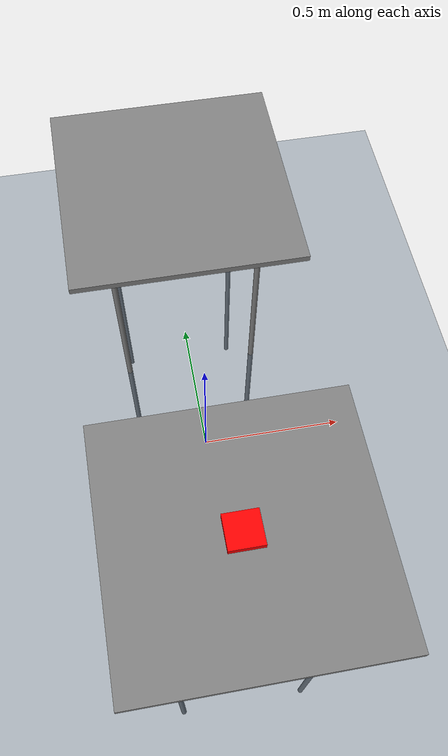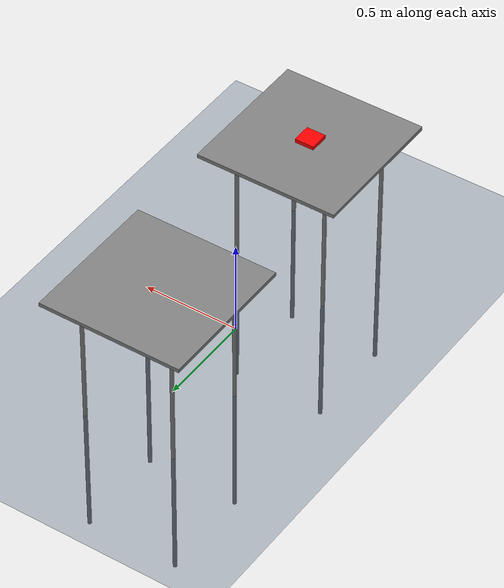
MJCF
<mujoco model="tableworld">
    <statistic center="0.3 0 0.4" extent="0.8"/>

    <visual>
        <headlight diffuse="0.6 0.6 0.6" ambient="0.1 0.1 0.1" specular="0 0 0"/>
        <rgba haze="0.15 0.25 0.35 1"/>
        <global azimuth="120" elevation="-20"/>
    </visual>

    <asset>
        <texture type="skybox" builtin="gradient" rgb1="0.3 0.5 0.7" rgb2="0 0 0" width="512" height="3072"/>
        <texture type="2d" name="groundplane" builtin="checker" mark="edge" rgb1="0.2 0.3 0.4" rgb2="0.1 0.2 0.3"
                 markrgb="0.8 0.8 0.8" width="300" height="300"/>
        <material name="groundplane" texture="groundplane" texuniform="true" texrepeat="5 5" reflectance="0.2"/>

    </asset>

    <worldbody>
        <light pos="0 0 1.5" dir="0 0 -1" directional="true"/>
        <geom name="floor" pos="0.0 0.0 0.0" size="0 0 0.05" type="plane" material="groundplane"/>

        <body name="table_left" pos="0.0 -0.6 0">
            <geom name="table_left_top" type="box" size=".37 .37 .01" pos="0 0 .7"/>
            <geom name="table_left_leg_1" type="cylinder" size=".01 .7" pos=".24 -.24 -.0" euler="0 0 0"/>
            <geom name="table_left_leg_2" type="cylinder" size=".01 .7" pos=".24 .24 -.0" euler="0 0 0"/>
            <geom name="table_left_leg_3" type="cylinder" size=".01 .7" pos="-.24 -.24 -.0" euler="0 0 0"/>
            <geom name="table_left_leg_4" type="cylinder" size=".01 .7" pos="-.24 .24 -.0" euler="0 0 0"/>
        </body>

        <body name="table_right" pos="0 0.6 0">
            <geom name="table_right_top" type="box" size=".37 .37 .01" pos="0 0 .7"/>
            <geom name="table_right_leg_1" type="cylinder" size=".01 .7" pos=".24 -.24 -.0" euler="0 0 0"/>
            <geom name="table_right_leg_2" type="cylinder" size=".01 .7" pos=".24 .24 -.0" euler="0 0 0"/>
            <geom name="table_right_leg_3" type="cylinder" size=".01 .7" pos="-.24 -.24 -.0" euler="0 0 0"/>
            <geom name="table_right_leg_4" type="cylinder" size=".01 .7" pos="-.24 .24 -.0" euler="0 0 0"/>
        </body>

        <body name="red_box" pos="0 -0.6 0.72" quat="0. 0. 1. 0.">
            <freejoint/>
            <geom type="box" size=".05 .05 .01" rgba="1 0 0 1"/>-->
        </body>

    </worldbody>

</mujoco>
